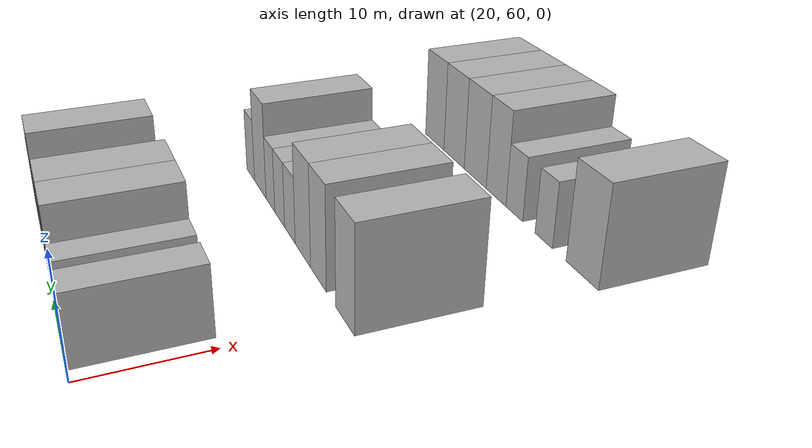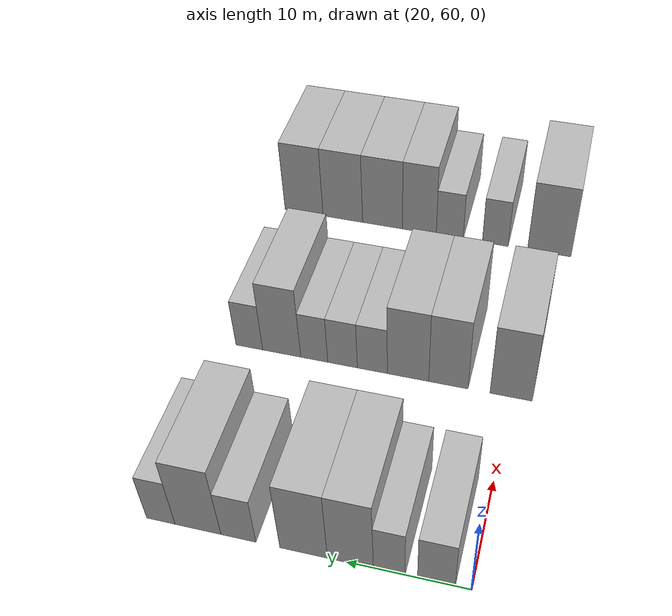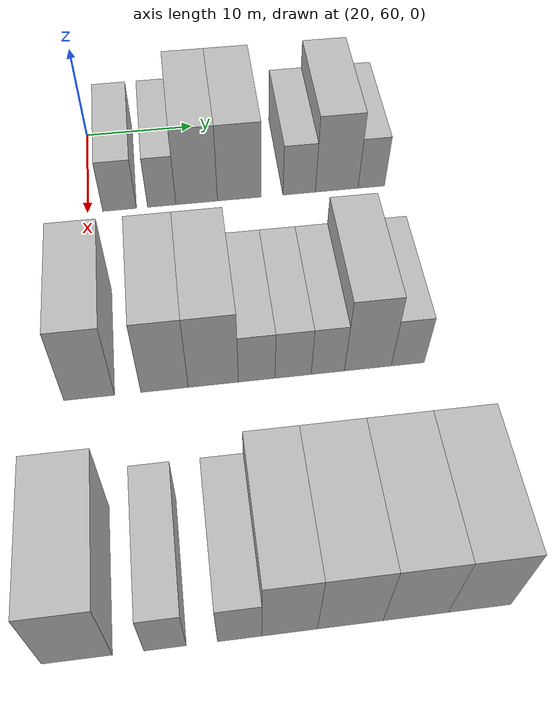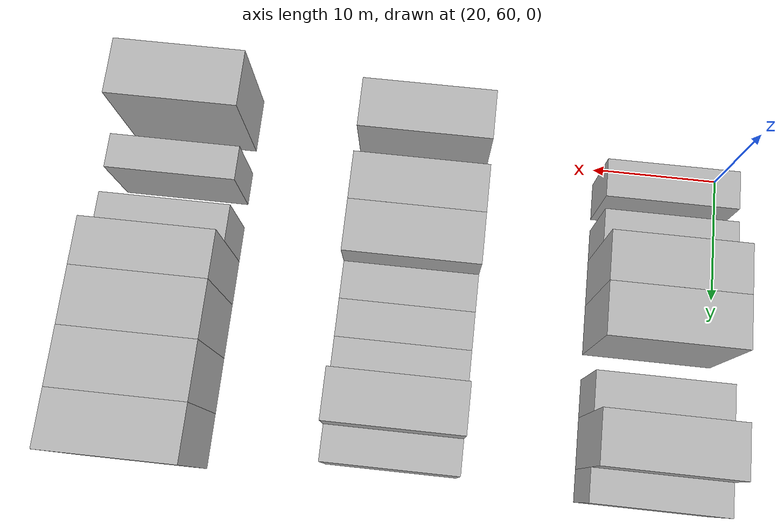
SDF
<sdf version="1.6">
 <world name="default">
  <model name="building_71">
   <static>1</static>
   <pose>25.0000 62.7997 0 0.000000 0.000000 0.000000</pose>
   <link name="link">
    <pose>0 0 3.00 0 0 0</pose>
    <collision name="collision"><geometry><box><size>10.0000 2.9833 6.0000</size></box></geometry></collision>
    <visual name="visual">
     <cast_shadows>0</cast_shadows>
     <geometry><box><size>10.0000 2.9833 6.0000</size></box></geometry>
     <material>
      <script>
       <uri>model://HANNAS_wall/materials/scripts</uri>
       <uri>model://HANNAS_wall/materials/textures</uri>
       <name>vrc/HANNAS_wall</name>
      </script>
     </material>
    </visual>
   </link>
  </model>
  <model name="building_72">
   <static>1</static>
   <pose>25.0000 66.5579 0 0.000000 0.000000 0.000000</pose>
   <link name="link">
    <pose>0 0 3.00 0 0 0</pose>
    <collision name="collision"><geometry><box><size>10.0000 2.5332 6.0000</size></box></geometry></collision>
    <visual name="visual">
     <cast_shadows>0</cast_shadows>
     <geometry><box><size>10.0000 2.5332 6.0000</size></box></geometry>
     <material>
      <script>
       <uri>model://HANNAS_wall/materials/scripts</uri>
       <uri>model://HANNAS_wall/materials/textures</uri>
       <name>vrc/HANNAS_wall</name>
      </script>
     </material>
    </visual>
   </link>
  </model>
  <model name="building_73">
   <static>1</static>
   <pose>25.0000 69.6863 0 0.000000 0.000000 0.000000</pose>
   <link name="link">
    <pose>0 0 4.50 0 0 0</pose>
    <collision name="collision"><geometry><box><size>10.0000 3.7235 9.0000</size></box></geometry></collision>
    <visual name="visual">
     <cast_shadows>0</cast_shadows>
     <geometry><box><size>10.0000 3.7235 9.0000</size></box></geometry>
     <material>
      <script>
       <uri>model://HANNAS_wall/materials/scripts</uri>
       <uri>model://HANNAS_wall/materials/textures</uri>
       <name>vrc/HANNAS_wall</name>
      </script>
     </material>
    </visual>
   </link>
  </model>
  <model name="building_74">
   <static>1</static>
   <pose>25.0000 73.5131 0 0.000000 0.000000 0.000000</pose>
   <link name="link">
    <pose>0 0 4.50 0 0 0</pose>
    <collision name="collision"><geometry><box><size>10.0000 3.9300 9.0000</size></box></geometry></collision>
    <visual name="visual">
     <cast_shadows>0</cast_shadows>
     <geometry><box><size>10.0000 3.9300 9.0000</size></box></geometry>
     <material>
      <script>
       <uri>model://HANNAS_wall/materials/scripts</uri>
       <uri>model://HANNAS_wall/materials/textures</uri>
       <name>vrc/HANNAS_wall</name>
      </script>
     </material>
    </visual>
   </link>
  </model>
  <model name="building_75">
   <static>1</static>
   <pose>25.0000 78.9555 0 0.000000 0.000000 0.000000</pose>
   <link name="link">
    <pose>0 0 3.00 0 0 0</pose>
    <collision name="collision"><geometry><box><size>10.0000 2.9548 6.0000</size></box></geometry></collision>
    <visual name="visual">
     <cast_shadows>0</cast_shadows>
     <geometry><box><size>10.0000 2.9548 6.0000</size></box></geometry>
     <material>
      <script>
       <uri>model://HANNAS_wall/materials/scripts</uri>
       <uri>model://HANNAS_wall/materials/textures</uri>
       <name>vrc/HANNAS_wall</name>
      </script>
     </material>
    </visual>
   </link>
  </model>
  <model name="building_76">
   <static>1</static>
   <pose>25.0000 82.3917 0 0.000000 0.000000 0.000000</pose>
   <link name="link">
    <pose>0 0 4.50 0 0 0</pose>
    <collision name="collision"><geometry><box><size>10.0000 3.9176 9.0000</size></box></geometry></collision>
    <visual name="visual">
     <cast_shadows>0</cast_shadows>
     <geometry><box><size>10.0000 3.9176 9.0000</size></box></geometry>
     <material>
      <script>
       <uri>model://HANNAS_wall/materials/scripts</uri>
       <uri>model://HANNAS_wall/materials/textures</uri>
       <name>vrc/HANNAS_wall</name>
      </script>
     </material>
    </visual>
   </link>
  </model>
  <model name="building_77">
   <static>1</static>
   <pose>25.0000 85.5784 0 0.000000 0.000000 0.000000</pose>
   <link name="link">
    <pose>0 0 3.00 0 0 0</pose>
    <collision name="collision"><geometry><box><size>10.0000 2.4559 6.0000</size></box></geometry></collision>
    <visual name="visual">
     <cast_shadows>0</cast_shadows>
     <geometry><box><size>10.0000 2.4559 6.0000</size></box></geometry>
     <material>
      <script>
       <uri>model://HANNAS_wall/materials/scripts</uri>
       <uri>model://HANNAS_wall/materials/textures</uri>
       <name>vrc/HANNAS_wall</name>
      </script>
     </material>
    </visual>
   </link>
  </model>
  <model name="building_194">
   <static>1</static>
   <pose>44.0000 59.9744 0 0.000000 0.000000 0.000000</pose>
   <link name="link">
    <pose>0 0 4.50 0 0 0</pose>
    <collision name="collision"><geometry><box><size>10.0000 3.8271 9.0000</size></box></geometry></collision>
    <visual name="visual">
     <cast_shadows>0</cast_shadows>
     <geometry><box><size>10.0000 3.8271 9.0000</size></box></geometry>
     <material>
      <script>
       <uri>model://HANNAS_wall/materials/scripts</uri>
       <uri>model://HANNAS_wall/materials/textures</uri>
       <name>vrc/HANNAS_wall</name>
      </script>
     </material>
    </visual>
   </link>
  </model>
  <model name="building_195">
   <static>1</static>
   <pose>44.0000 65.7006 0 0.000000 0.000000 0.000000</pose>
   <link name="link">
    <pose>0 0 4.50 0 0 0</pose>
    <collision name="collision"><geometry><box><size>10.0000 3.6254 9.0000</size></box></geometry></collision>
    <visual name="visual">
     <cast_shadows>0</cast_shadows>
     <geometry><box><size>10.0000 3.6254 9.0000</size></box></geometry>
     <material>
      <script>
       <uri>model://HANNAS_wall/materials/scripts</uri>
       <uri>model://HANNAS_wall/materials/textures</uri>
       <name>vrc/HANNAS_wall</name>
      </script>
     </material>
    </visual>
   </link>
  </model>
  <model name="building_196">
   <static>1</static>
   <pose>44.0000 69.4477 0 0.000000 0.000000 0.000000</pose>
   <link name="link">
    <pose>0 0 4.50 0 0 0</pose>
    <collision name="collision"><geometry><box><size>10.0000 3.8686 9.0000</size></box></geometry></collision>
    <visual name="visual">
     <cast_shadows>0</cast_shadows>
     <geometry><box><size>10.0000 3.8686 9.0000</size></box></geometry>
     <material>
      <script>
       <uri>model://HANNAS_wall/materials/scripts</uri>
       <uri>model://HANNAS_wall/materials/textures</uri>
       <name>vrc/HANNAS_wall</name>
      </script>
     </material>
    </visual>
   </link>
  </model>
  <model name="building_197">
   <static>1</static>
   <pose>44.0000 72.7989 0 0.000000 0.000000 0.000000</pose>
   <link name="link">
    <pose>0 0 3.00 0 0 0</pose>
    <collision name="collision"><geometry><box><size>10.0000 2.8337 6.0000</size></box></geometry></collision>
    <visual name="visual">
     <cast_shadows>0</cast_shadows>
     <geometry><box><size>10.0000 2.8337 6.0000</size></box></geometry>
     <material>
      <script>
       <uri>model://HANNAS_wall/materials/scripts</uri>
       <uri>model://HANNAS_wall/materials/textures</uri>
       <name>vrc/HANNAS_wall</name>
      </script>
     </material>
    </visual>
   </link>
  </model>
  <model name="building_198">
   <static>1</static>
   <pose>44.0000 75.6313 0 0.000000 0.000000 0.000000</pose>
   <link name="link">
    <pose>0 0 3.00 0 0 0</pose>
    <collision name="collision"><geometry><box><size>10.0000 2.8311 6.0000</size></box></geometry></collision>
    <visual name="visual">
     <cast_shadows>0</cast_shadows>
     <geometry><box><size>10.0000 2.8311 6.0000</size></box></geometry>
     <material>
      <script>
       <uri>model://HANNAS_wall/materials/scripts</uri>
       <uri>model://HANNAS_wall/materials/textures</uri>
       <name>vrc/HANNAS_wall</name>
      </script>
     </material>
    </visual>
   </link>
  </model>
  <model name="building_199">
   <static>1</static>
   <pose>44.0000 78.3486 0 0.000000 0.000000 0.000000</pose>
   <link name="link">
    <pose>0 0 3.00 0 0 0</pose>
    <collision name="collision"><geometry><box><size>10.0000 2.6035 6.0000</size></box></geometry></collision>
    <visual name="visual">
     <cast_shadows>0</cast_shadows>
     <geometry><box><size>10.0000 2.6035 6.0000</size></box></geometry>
     <material>
      <script>
       <uri>model://HANNAS_wall/materials/scripts</uri>
       <uri>model://HANNAS_wall/materials/textures</uri>
       <name>vrc/HANNAS_wall</name>
      </script>
     </material>
    </visual>
   </link>
  </model>
  <model name="building_200">
   <static>1</static>
   <pose>44.0000 81.5048 0 0.000000 0.000000 0.000000</pose>
   <link name="link">
    <pose>0 0 4.50 0 0 0</pose>
    <collision name="collision"><geometry><box><size>10.0000 3.7090 9.0000</size></box></geometry></collision>
    <visual name="visual">
     <cast_shadows>0</cast_shadows>
     <geometry><box><size>10.0000 3.7090 9.0000</size></box></geometry>
     <material>
      <script>
       <uri>model://HANNAS_wall/materials/scripts</uri>
       <uri>model://HANNAS_wall/materials/textures</uri>
       <name>vrc/HANNAS_wall</name>
      </script>
     </material>
    </visual>
   </link>
  </model>
  <model name="building_201">
   <static>1</static>
   <pose>44.0000 84.6715 0 0.000000 0.000000 0.000000</pose>
   <link name="link">
    <pose>0 0 3.00 0 0 0</pose>
    <collision name="collision"><geometry><box><size>10.0000 2.6244 6.0000</size></box></geometry></collision>
    <visual name="visual">
     <cast_shadows>0</cast_shadows>
     <geometry><box><size>10.0000 2.6244 6.0000</size></box></geometry>
     <material>
      <script>
       <uri>model://HANNAS_wall/materials/scripts</uri>
       <uri>model://HANNAS_wall/materials/textures</uri>
       <name>vrc/HANNAS_wall</name>
      </script>
     </material>
    </visual>
   </link>
  </model>
  <model name="building_312">
   <static>1</static>
   <pose>63.0000 59.0565 0 0.000000 0.000000 0.000000</pose>
   <link name="link">
    <pose>0 0 4.50 0 0 0</pose>
    <collision name="collision"><geometry><box><size>10.0000 4.4509 9.0000</size></box></geometry></collision>
    <visual name="visual">
     <cast_shadows>0</cast_shadows>
     <geometry><box><size>10.0000 4.4509 9.0000</size></box></geometry>
     <material>
      <script>
       <uri>model://HANNAS_wall/materials/scripts</uri>
       <uri>model://HANNAS_wall/materials/textures</uri>
       <name>vrc/HANNAS_wall</name>
      </script>
     </material>
    </visual>
   </link>
  </model>
  <model name="building_313">
   <static>1</static>
   <pose>63.0000 64.6294 0 0.000000 0.000000 0.000000</pose>
   <link name="link">
    <pose>0 0 3.00 0 0 0</pose>
    <collision name="collision"><geometry><box><size>10.0000 2.6950 6.0000</size></box></geometry></collision>
    <visual name="visual">
     <cast_shadows>0</cast_shadows>
     <geometry><box><size>10.0000 2.6950 6.0000</size></box></geometry>
     <material>
      <script>
       <uri>model://HANNAS_wall/materials/scripts</uri>
       <uri>model://HANNAS_wall/materials/textures</uri>
       <name>vrc/HANNAS_wall</name>
      </script>
     </material>
    </visual>
   </link>
  </model>
  <model name="building_314">
   <static>1</static>
   <pose>63.0000 69.4036 0 0.000000 0.000000 0.000000</pose>
   <link name="link">
    <pose>0 0 3.00 0 0 0</pose>
    <collision name="collision"><geometry><box><size>10.0000 2.8533 6.0000</size></box></geometry></collision>
    <visual name="visual">
     <cast_shadows>0</cast_shadows>
     <geometry><box><size>10.0000 2.8533 6.0000</size></box></geometry>
     <material>
      <script>
       <uri>model://HANNAS_wall/materials/scripts</uri>
       <uri>model://HANNAS_wall/materials/textures</uri>
       <name>vrc/HANNAS_wall</name>
      </script>
     </material>
    </visual>
   </link>
  </model>
  <model name="building_315">
   <static>1</static>
   <pose>63.0000 72.6359 0 0.000000 0.000000 0.000000</pose>
   <link name="link">
    <pose>0 0 4.50 0 0 0</pose>
    <collision name="collision"><geometry><box><size>10.0000 3.6112 9.0000</size></box></geometry></collision>
    <visual name="visual">
     <cast_shadows>0</cast_shadows>
     <geometry><box><size>10.0000 3.6112 9.0000</size></box></geometry>
     <material>
      <script>
       <uri>model://HANNAS_wall/materials/scripts</uri>
       <uri>model://HANNAS_wall/materials/textures</uri>
       <name>vrc/HANNAS_wall</name>
      </script>
     </material>
    </visual>
   </link>
  </model>
  <model name="building_316">
   <static>1</static>
   <pose>63.0000 76.5963 0 0.000000 0.000000 0.000000</pose>
   <link name="link">
    <pose>0 0 4.50 0 0 0</pose>
    <collision name="collision"><geometry><box><size>10.0000 4.3098 9.0000</size></box></geometry></collision>
    <visual name="visual">
     <cast_shadows>0</cast_shadows>
     <geometry><box><size>10.0000 4.3098 9.0000</size></box></geometry>
     <material>
      <script>
       <uri>model://HANNAS_wall/materials/scripts</uri>
       <uri>model://HANNAS_wall/materials/textures</uri>
       <name>vrc/HANNAS_wall</name>
      </script>
     </material>
    </visual>
   </link>
  </model>
  <model name="building_317">
   <static>1</static>
   <pose>63.0000 80.9185 0 0.000000 0.000000 0.000000</pose>
   <link name="link">
    <pose>0 0 4.50 0 0 0</pose>
    <collision name="collision"><geometry><box><size>10.0000 4.3346 9.0000</size></box></geometry></collision>
    <visual name="visual">
     <cast_shadows>0</cast_shadows>
     <geometry><box><size>10.0000 4.3346 9.0000</size></box></geometry>
     <material>
      <script>
       <uri>model://HANNAS_wall/materials/scripts</uri>
       <uri>model://HANNAS_wall/materials/textures</uri>
       <name>vrc/HANNAS_wall</name>
      </script>
     </material>
    </visual>
   </link>
  </model>
  <model name="building_318">
   <static>1</static>
   <pose>63.0000 85.1857 0 0.000000 0.000000 0.000000</pose>
   <link name="link">
    <pose>0 0 4.50 0 0 0</pose>
    <collision name="collision"><geometry><box><size>10.0000 4.1999 9.0000</size></box></geometry></collision>
    <visual name="visual">
     <cast_shadows>0</cast_shadows>
     <geometry><box><size>10.0000 4.1999 9.0000</size></box></geometry>
     <material>
      <script>
       <uri>model://HANNAS_wall/materials/scripts</uri>
       <uri>model://HANNAS_wall/materials/textures</uri>
       <name>vrc/HANNAS_wall</name>
      </script>
     </material>
    </visual>
   </link>
  </model>
 </world>
</sdf>
